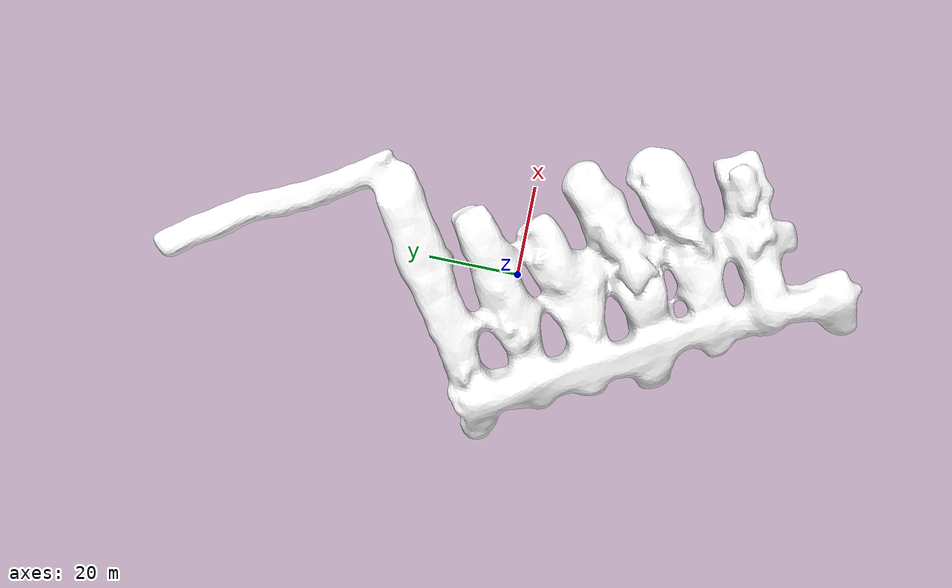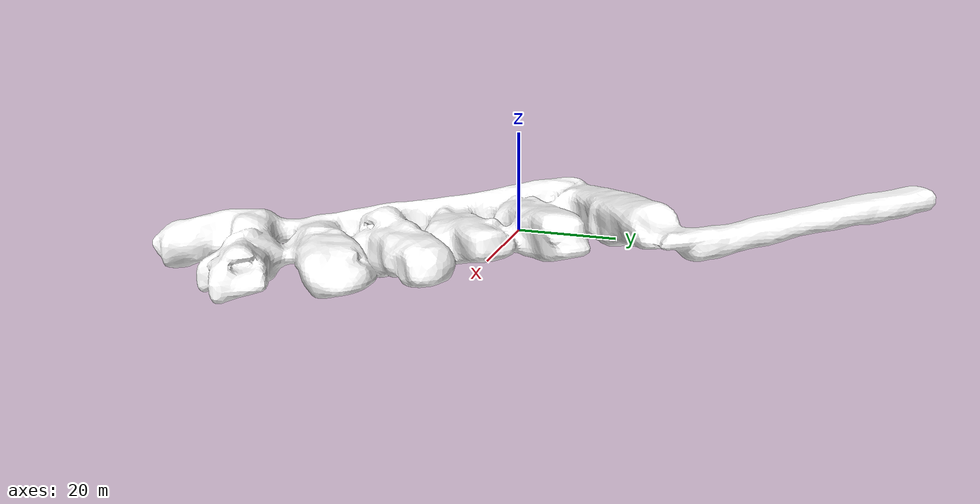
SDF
<?xml version="1.0"?>
<sdf version="1.6">
    <model name="mine">
      <pose frame=''>0 0 0  0 0 0</pose>
      <static>true</static>
      <link name="body">
        <collision name="body_collision">
          <geometry>
            <mesh>
              <uri>model://mine/meshes/Old_mine.dae</uri>
              <scale>1 1 1</scale>
            </mesh>
          </geometry>
        </collision>
        <visual name="body_visual">
          <geometry>
            <mesh>
              <uri>model://mine/meshes/Old_mine.dae</uri>
              <scale>1 1 1</scale>
            </mesh>
          </geometry>
          <material>
          <script>
            <uri>file://media/materials/scripts/gazebo.material</uri>
            <name>Gazebo/Motorway</name>
          </script>
          <ambient>1 1 1 1</ambient>
        </material>
        </visual>
      </link>
      <static>1</static>
    </model>
</sdf>
